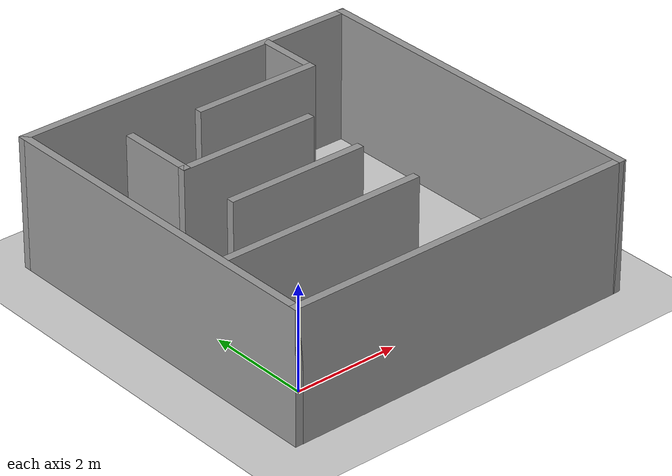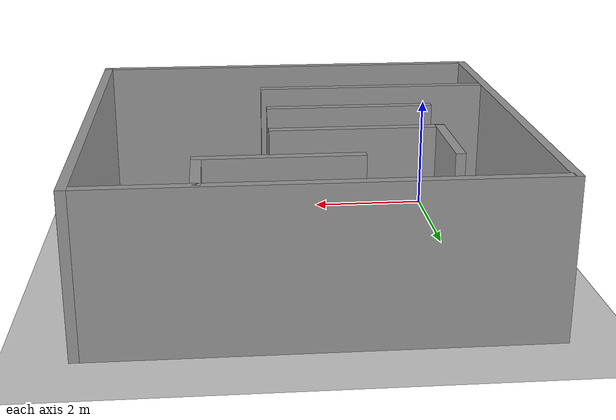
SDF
<sdf version="1.6">
 <world name="default">
  <include><uri>model://ground_plane</uri></include>
  <include><uri>model://sun</uri></include>
  <scene><shadows>false</shadows></scene>
  <physics type="ode">
   <real_time_update_rate>1000.0</real_time_update_rate>
   <max_step_size>0.001</max_step_size>
   <real_time_factor>1</real_time_factor>
   <ode>
    <solver>
     <type>quick</type>
     <iters>150</iters>
     <precon_iters>0</precon_iters>
     <sor>1.400000</sor>
     <use_dynamic_moi_rescaling>1</use_dynamic_moi_rescaling>
    </solver>
    <constraints>
     <cfm>0.00001</cfm>
     <erp>0.2</erp>
     <contact_max_correcting_vel>2000.000000</contact_max_correcting_vel>
     <contact_surface_layer>0.01000</contact_surface_layer>
    </constraints>
   </ode>
  </physics>
  <model name="practice_world"><static>1</static><include><uri>model://practice_world</uri></include></model>
  <plugin name="gazebo_ros_state" filename="libgazebo_ros_state.so">
   <ros><namespace>/</namespace></ros>
   <update_rate>30</update_rate>
  </plugin>
 </world>
</sdf>

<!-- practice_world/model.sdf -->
<sdf version='1.7'>
  <model name='practice_world'>
    <pose>2.465 2.345 0 0 -0 0</pose>
    <link name='Wall_1'>
      <collision name='Wall_1_Collision'>
        <geometry>
          <box>
            <size>7 0.15 2.5</size>
          </box>
        </geometry>
        <pose>0 0 1.25 0 -0 0</pose>
      </collision>
      <visual name='Wall_1_Visual'>
        <pose>0 0 1.25 0 -0 0</pose>
        <geometry>
          <box>
            <size>7 0.15 2.5</size>
          </box>
        </geometry>
        <material>
          <script>
            <uri>file://media/materials/scripts/gazebo.material</uri>
            <name>Gazebo/Grey</name>
          </script>
          <ambient>1 1 1 1</ambient>
        </material>
        <meta>
          <layer>0</layer>
        </meta>
      </visual>
      <pose>0 -3.425 0 0 -0 0</pose>
    </link>
    <link name='Wall_13'>
      <collision name='Wall_13_Collision'>
        <geometry>
          <box>
            <size>1.25 0.15 2.5</size>
          </box>
        </geometry>
        <pose>0 0 1.25 0 -0 0</pose>
      </collision>
      <visual name='Wall_13_Visual'>
        <pose>0 0 1.25 0 -0 0</pose>
        <geometry>
          <box>
            <size>1.25 0.15 2.5</size>
          </box>
        </geometry>
        <material>
          <script>
            <uri>file://media/materials/scripts/gazebo.material</uri>
            <name>Gazebo/Grey</name>
          </script>
          <ambient>1 1 1 1</ambient>
        </material>
        <meta>
          <layer>0</layer>
        </meta>
      </visual>
      <pose>1.70026 2.82579 0 0 -0 -1.5708</pose>
    </link>
    <link name='Wall_14'>
      <collision name='Wall_14_Collision'>
        <geometry>
          <box>
            <size>2.5 0.15 2.5</size>
          </box>
        </geometry>
        <pose>0 0 1.25 0 -0 0</pose>
      </collision>
      <visual name='Wall_14_Visual'>
        <pose>0 0 1.25 0 -0 0</pose>
        <geometry>
          <box>
            <size>2.5 0.15 2.5</size>
          </box>
        </geometry>
        <material>
          <script>
            <uri>file://media/materials/scripts/gazebo.material</uri>
            <name>Gazebo/Grey</name>
          </script>
          <ambient>1 1 1 1</ambient>
        </material>
        <meta>
          <layer>0</layer>
        </meta>
      </visual>
      <pose>0.52526 2.27579 0 0 -0 3.14159</pose>
    </link>
    <link name='Wall_16'>
      <collision name='Wall_16_Collision'>
        <geometry>
          <box>
            <size>2.75 0.15 2.5</size>
          </box>
        </geometry>
        <pose>0 0 1.25 0 -0 0</pose>
      </collision>
      <visual name='Wall_16_Visual'>
        <pose>0 0 1.25 0 -0 0</pose>
        <geometry>
          <box>
            <size>2.75 0.15 2.5</size>
          </box>
        </geometry>
        <material>
          <script>
            <uri>file://media/materials/scripts/gazebo.material</uri>
            <name>Gazebo/Grey</name>
          </script>
          <ambient>1 1 1 1</ambient>
        </material>
        <meta>
          <layer>0</layer>
        </meta>
      </visual>
      <pose>-0.77151 0.942388 0 0 -0 0</pose>
    </link>
    <link name='Wall_18'>
      <collision name='Wall_18_Collision'>
        <geometry>
          <box>
            <size>2.75 0.15 2.5</size>
          </box>
        </geometry>
        <pose>0 0 1.25 0 -0 0</pose>
      </collision>
      <visual name='Wall_18_Visual'>
        <pose>0 0 1.25 0 -0 0</pose>
        <geometry>
          <box>
            <size>2.75 0.15 2.5</size>
          </box>
        </geometry>
        <material>
          <script>
            <uri>file://media/materials/scripts/gazebo.material</uri>
            <name>Gazebo/Grey</name>
          </script>
          <ambient>1 1 1 1</ambient>
        </material>
        <meta>
          <layer>0</layer>
        </meta>
      </visual>
      <pose>-0.805872 -0.338528 0 0 -0 0</pose>
    </link>
    <link name='Wall_20'>
      <collision name='Wall_20_Collision'>
        <geometry>
          <box>
            <size>4 0.15 2.5</size>
          </box>
        </geometry>
        <pose>0 0 1.25 0 -0 0</pose>
      </collision>
      <visual name='Wall_20_Visual'>
        <pose>0 0 1.25 0 -0 0</pose>
        <geometry>
          <box>
            <size>4 0.15 2.5</size>
          </box>
        </geometry>
        <material>
          <script>
            <uri>file://media/materials/scripts/gazebo.material</uri>
            <name>Gazebo/Grey</name>
          </script>
          <ambient>1 1 1 1</ambient>
        </material>
        <meta>
          <layer>0</layer>
        </meta>
      </visual>
      <pose>-1.39363 -1.65831 0 0 -0 0</pose>
    </link>
    <link name='Wall_22'>
      <collision name='Wall_22_Collision'>
        <geometry>
          <box>
            <size>1.5 0.15 2.5</size>
          </box>
        </geometry>
        <pose>0 0 1.25 0 -0 0</pose>
      </collision>
      <visual name='Wall_22_Visual'>
        <pose>0 0 1.25 0 -0 0</pose>
        <geometry>
          <box>
            <size>1.5 0.15 2.5</size>
          </box>
        </geometry>
        <material>
          <script>
            <uri>file://media/materials/scripts/gazebo.material</uri>
            <name>Gazebo/Grey</name>
          </script>
          <ambient>1 1 1 1</ambient>
        </material>
        <meta>
          <layer>0</layer>
        </meta>
      </visual>
      <pose>-2.07151 1.6326 0 0 -0 1.5708</pose>
    </link>
    <link name='Wall_3'>
      <collision name='Wall_3_Collision'>
        <geometry>
          <box>
            <size>7 0.15 2.5</size>
          </box>
        </geometry>
        <pose>0 0 1.25 0 -0 0</pose>
      </collision>
      <visual name='Wall_3_Visual'>
        <pose>0 0 1.25 0 -0 0</pose>
        <geometry>
          <box>
            <size>7 0.15 2.5</size>
          </box>
        </geometry>
        <material>
          <script>
            <uri>file://media/materials/scripts/gazebo.material</uri>
            <name>Gazebo/Grey</name>
          </script>
          <ambient>1 1 1 1</ambient>
        </material>
        <meta>
          <layer>0</layer>
        </meta>
      </visual>
      <pose>3.425 0 0 0 -0 1.5708</pose>
    </link>
    <link name='Wall_4'>
      <collision name='Wall_4_Collision'>
        <geometry>
          <box>
            <size>7 0.15 2.5</size>
          </box>
        </geometry>
        <pose>0 0 1.25 0 -0 0</pose>
      </collision>
      <visual name='Wall_4_Visual'>
        <pose>0 0 1.25 0 -0 0</pose>
        <geometry>
          <box>
            <size>7 0.15 2.5</size>
          </box>
        </geometry>
        <material>
          <script>
            <uri>file://media/materials/scripts/gazebo.material</uri>
            <name>Gazebo/Grey</name>
          </script>
          <ambient>1 1 1 1</ambient>
        </material>
        <meta>
          <layer>0</layer>
        </meta>
      </visual>
      <pose>0 3.425 0 0 -0 3.14159</pose>
    </link>
    <link name='Wall_5'>
      <collision name='Wall_5_Collision'>
        <geometry>
          <box>
            <size>7 0.15 2.5</size>
          </box>
        </geometry>
        <pose>0 0 1.25 0 -0 0</pose>
      </collision>
      <visual name='Wall_5_Visual'>
        <pose>0 0 1.25 0 -0 0</pose>
        <geometry>
          <box>
            <size>7 0.15 2.5</size>
          </box>
        </geometry>
        <material>
          <script>
            <uri>file://media/materials/scripts/gazebo.material</uri>
            <name>Gazebo/Grey</name>
          </script>
          <ambient>1 1 1 1</ambient>
        </material>
        <meta>
          <layer>0</layer>
        </meta>
      </visual>
      <pose>-3.425 0 0 0 -0 -1.5708</pose>
    </link>
    <static>1</static>
  </model>
</sdf>
